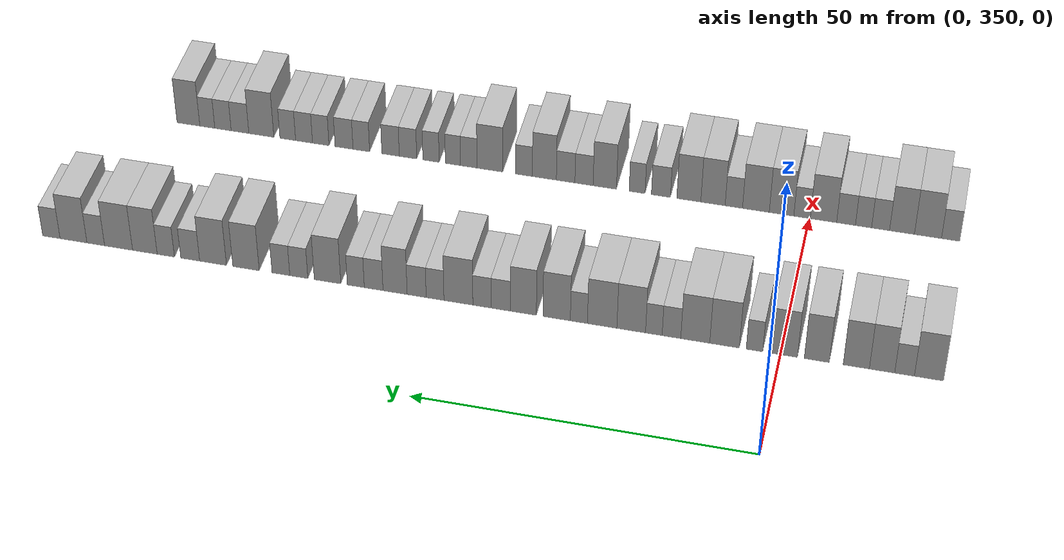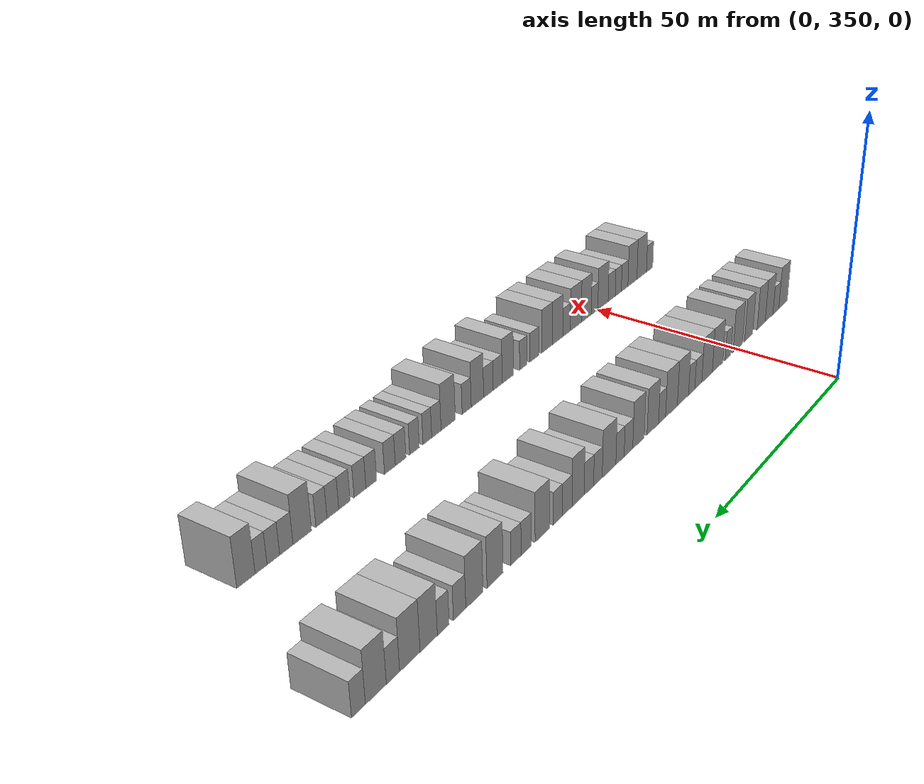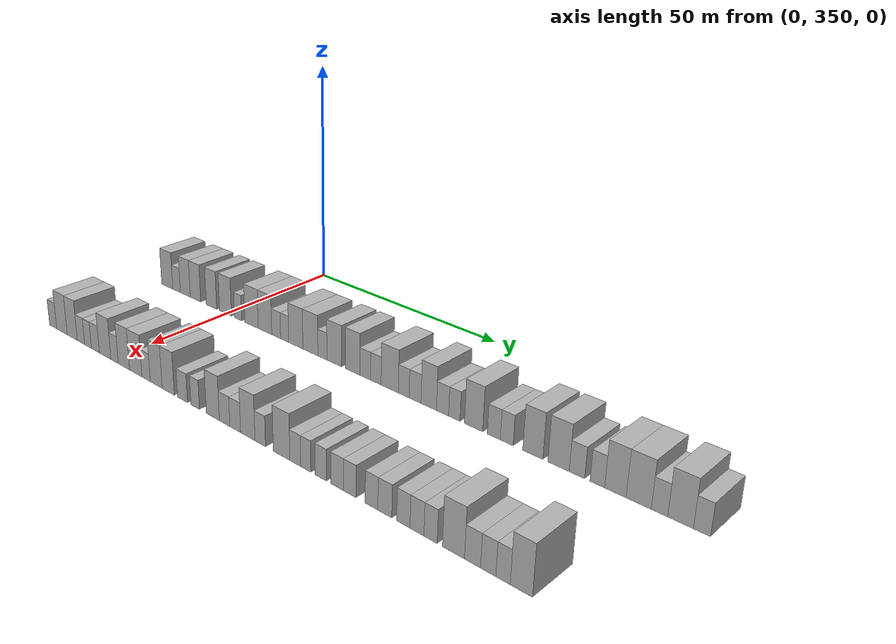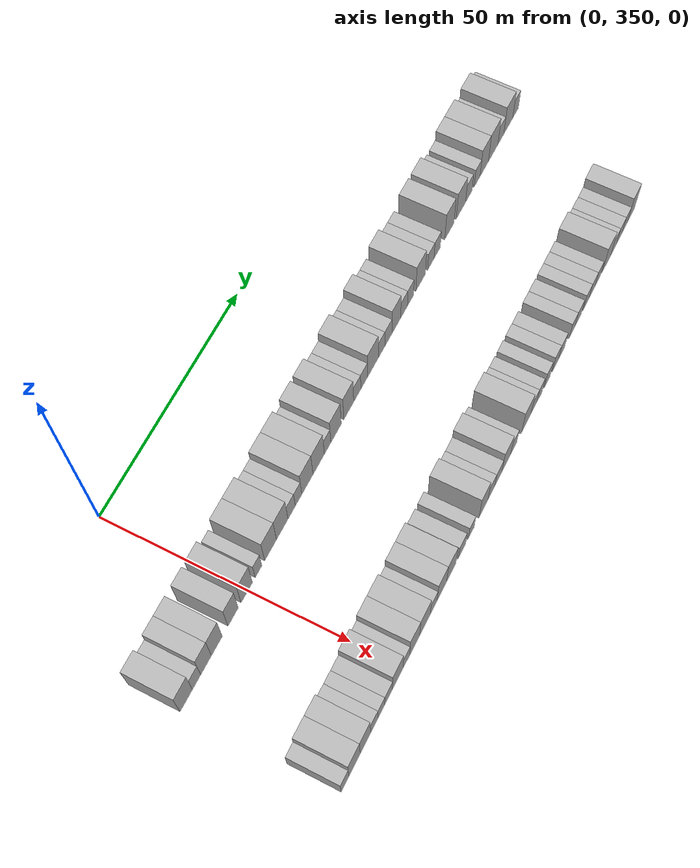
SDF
<sdf version="1.6">
 <world name="default">
  <model name="building_198">
   <static>1</static>
   <pose>25.0000 328.7330 0 0.000000 0.000000 0.000000</pose>
   <link name="link">
    <pose>0 0 4.50 0 0 0</pose>
    <collision name="collision"><geometry><box><size>10.0000 4.1553 9.0000</size></box></geometry></collision>
    <visual name="visual">
     <cast_shadows>0</cast_shadows>
     <geometry><box><size>10.0000 4.1553 9.0000</size></box></geometry>
     <material>
      <script>
       <uri>model://HANNAS_wall/materials/scripts</uri>
       <uri>model://HANNAS_wall/materials/textures</uri>
       <name>vrc/HANNAS_wall</name>
      </script>
     </material>
    </visual>
   </link>
  </model>
  <model name="building_199">
   <static>1</static>
   <pose>25.0000 332.2153 0 0.000000 0.000000 0.000000</pose>
   <link name="link">
    <pose>0 0 3.00 0 0 0</pose>
    <collision name="collision"><geometry><box><size>10.0000 2.8095 6.0000</size></box></geometry></collision>
    <visual name="visual">
     <cast_shadows>0</cast_shadows>
     <geometry><box><size>10.0000 2.8095 6.0000</size></box></geometry>
     <material>
      <script>
       <uri>model://HANNAS_wall/materials/scripts</uri>
       <uri>model://HANNAS_wall/materials/textures</uri>
       <name>vrc/HANNAS_wall</name>
      </script>
     </material>
    </visual>
   </link>
  </model>
  <model name="building_200">
   <static>1</static>
   <pose>25.0000 335.4338 0 0.000000 0.000000 0.000000</pose>
   <link name="link">
    <pose>0 0 4.50 0 0 0</pose>
    <collision name="collision"><geometry><box><size>10.0000 3.6274 9.0000</size></box></geometry></collision>
    <visual name="visual">
     <cast_shadows>0</cast_shadows>
     <geometry><box><size>10.0000 3.6274 9.0000</size></box></geometry>
     <material>
      <script>
       <uri>model://HANNAS_wall/materials/scripts</uri>
       <uri>model://HANNAS_wall/materials/textures</uri>
       <name>vrc/HANNAS_wall</name>
      </script>
     </material>
    </visual>
   </link>
  </model>
  <model name="building_201">
   <static>1</static>
   <pose>25.0000 339.1266 0 0.000000 0.000000 0.000000</pose>
   <link name="link">
    <pose>0 0 4.50 0 0 0</pose>
    <collision name="collision"><geometry><box><size>10.0000 3.7583 9.0000</size></box></geometry></collision>
    <visual name="visual">
     <cast_shadows>0</cast_shadows>
     <geometry><box><size>10.0000 3.7583 9.0000</size></box></geometry>
     <material>
      <script>
       <uri>model://HANNAS_wall/materials/scripts</uri>
       <uri>model://HANNAS_wall/materials/textures</uri>
       <name>vrc/HANNAS_wall</name>
      </script>
     </material>
    </visual>
   </link>
  </model>
  <model name="building_202">
   <static>1</static>
   <pose>25.0000 344.8124 0 0.000000 0.000000 0.000000</pose>
   <link name="link">
    <pose>0 0 4.50 0 0 0</pose>
    <collision name="collision"><geometry><box><size>10.0000 3.6133 9.0000</size></box></geometry></collision>
    <visual name="visual">
     <cast_shadows>0</cast_shadows>
     <geometry><box><size>10.0000 3.6133 9.0000</size></box></geometry>
     <material>
      <script>
       <uri>model://HANNAS_wall/materials/scripts</uri>
       <uri>model://HANNAS_wall/materials/textures</uri>
       <name>vrc/HANNAS_wall</name>
      </script>
     </material>
    </visual>
   </link>
  </model>
  <model name="building_203">
   <static>1</static>
   <pose>25.0000 349.6343 0 0.000000 0.000000 0.000000</pose>
   <link name="link">
    <pose>0 0 4.50 0 0 0</pose>
    <collision name="collision"><geometry><box><size>10.0000 4.0304 9.0000</size></box></geometry></collision>
    <visual name="visual">
     <cast_shadows>0</cast_shadows>
     <geometry><box><size>10.0000 4.0304 9.0000</size></box></geometry>
     <material>
      <script>
       <uri>model://HANNAS_wall/materials/scripts</uri>
       <uri>model://HANNAS_wall/materials/textures</uri>
       <name>vrc/HANNAS_wall</name>
      </script>
     </material>
    </visual>
   </link>
  </model>
  <model name="building_204">
   <static>1</static>
   <pose>25.0000 353.8510 0 0.000000 0.000000 0.000000</pose>
   <link name="link">
    <pose>0 0 3.00 0 0 0</pose>
    <collision name="collision"><geometry><box><size>10.0000 2.4030 6.0000</size></box></geometry></collision>
    <visual name="visual">
     <cast_shadows>0</cast_shadows>
     <geometry><box><size>10.0000 2.4030 6.0000</size></box></geometry>
     <material>
      <script>
       <uri>model://HANNAS_wall/materials/scripts</uri>
       <uri>model://HANNAS_wall/materials/textures</uri>
       <name>vrc/HANNAS_wall</name>
      </script>
     </material>
    </visual>
   </link>
  </model>
  <model name="building_205">
   <static>1</static>
   <pose>25.0000 358.2186 0 0.000000 0.000000 0.000000</pose>
   <link name="link">
    <pose>0 0 4.50 0 0 0</pose>
    <collision name="collision"><geometry><box><size>10.0000 4.3323 9.0000</size></box></geometry></collision>
    <visual name="visual">
     <cast_shadows>0</cast_shadows>
     <geometry><box><size>10.0000 4.3323 9.0000</size></box></geometry>
     <material>
      <script>
       <uri>model://HANNAS_wall/materials/scripts</uri>
       <uri>model://HANNAS_wall/materials/textures</uri>
       <name>vrc/HANNAS_wall</name>
      </script>
     </material>
    </visual>
   </link>
  </model>
  <model name="building_206">
   <static>1</static>
   <pose>25.0000 362.5115 0 0.000000 0.000000 0.000000</pose>
   <link name="link">
    <pose>0 0 4.50 0 0 0</pose>
    <collision name="collision"><geometry><box><size>10.0000 4.2535 9.0000</size></box></geometry></collision>
    <visual name="visual">
     <cast_shadows>0</cast_shadows>
     <geometry><box><size>10.0000 4.2535 9.0000</size></box></geometry>
     <material>
      <script>
       <uri>model://HANNAS_wall/materials/scripts</uri>
       <uri>model://HANNAS_wall/materials/textures</uri>
       <name>vrc/HANNAS_wall</name>
      </script>
     </material>
    </visual>
   </link>
  </model>
  <model name="building_207">
   <static>1</static>
   <pose>25.0000 366.0098 0 0.000000 0.000000 0.000000</pose>
   <link name="link">
    <pose>0 0 3.00 0 0 0</pose>
    <collision name="collision"><geometry><box><size>10.0000 2.7432 6.0000</size></box></geometry></collision>
    <visual name="visual">
     <cast_shadows>0</cast_shadows>
     <geometry><box><size>10.0000 2.7432 6.0000</size></box></geometry>
     <material>
      <script>
       <uri>model://HANNAS_wall/materials/scripts</uri>
       <uri>model://HANNAS_wall/materials/textures</uri>
       <name>vrc/HANNAS_wall</name>
      </script>
     </material>
    </visual>
   </link>
  </model>
  <model name="building_208">
   <static>1</static>
   <pose>25.0000 368.6078 0 0.000000 0.000000 0.000000</pose>
   <link name="link">
    <pose>0 0 3.00 0 0 0</pose>
    <collision name="collision"><geometry><box><size>10.0000 2.4528 6.0000</size></box></geometry></collision>
    <visual name="visual">
     <cast_shadows>0</cast_shadows>
     <geometry><box><size>10.0000 2.4528 6.0000</size></box></geometry>
     <material>
      <script>
       <uri>model://HANNAS_wall/materials/scripts</uri>
       <uri>model://HANNAS_wall/materials/textures</uri>
       <name>vrc/HANNAS_wall</name>
      </script>
     </material>
    </visual>
   </link>
  </model>
  <model name="building_209">
   <static>1</static>
   <pose>25.0000 371.9555 0 0.000000 0.000000 0.000000</pose>
   <link name="link">
    <pose>0 0 4.50 0 0 0</pose>
    <collision name="collision"><geometry><box><size>10.0000 4.2426 9.0000</size></box></geometry></collision>
    <visual name="visual">
     <cast_shadows>0</cast_shadows>
     <geometry><box><size>10.0000 4.2426 9.0000</size></box></geometry>
     <material>
      <script>
       <uri>model://HANNAS_wall/materials/scripts</uri>
       <uri>model://HANNAS_wall/materials/textures</uri>
       <name>vrc/HANNAS_wall</name>
      </script>
     </material>
    </visual>
   </link>
  </model>
  <model name="building_210">
   <static>1</static>
   <pose>25.0000 376.2689 0 0.000000 0.000000 0.000000</pose>
   <link name="link">
    <pose>0 0 4.50 0 0 0</pose>
    <collision name="collision"><geometry><box><size>10.0000 4.3841 9.0000</size></box></geometry></collision>
    <visual name="visual">
     <cast_shadows>0</cast_shadows>
     <geometry><box><size>10.0000 4.3841 9.0000</size></box></geometry>
     <material>
      <script>
       <uri>model://HANNAS_wall/materials/scripts</uri>
       <uri>model://HANNAS_wall/materials/textures</uri>
       <name>vrc/HANNAS_wall</name>
      </script>
     </material>
    </visual>
   </link>
  </model>
  <model name="building_211">
   <static>1</static>
   <pose>25.0000 379.7308 0 0.000000 0.000000 0.000000</pose>
   <link name="link">
    <pose>0 0 3.00 0 0 0</pose>
    <collision name="collision"><geometry><box><size>10.0000 2.5398 6.0000</size></box></geometry></collision>
    <visual name="visual">
     <cast_shadows>0</cast_shadows>
     <geometry><box><size>10.0000 2.5398 6.0000</size></box></geometry>
     <material>
      <script>
       <uri>model://HANNAS_wall/materials/scripts</uri>
       <uri>model://HANNAS_wall/materials/textures</uri>
       <name>vrc/HANNAS_wall</name>
      </script>
     </material>
    </visual>
   </link>
  </model>
  <model name="building_212">
   <static>1</static>
   <pose>25.0000 383.0440 0 0.000000 0.000000 0.000000</pose>
   <link name="link">
    <pose>0 0 4.50 0 0 0</pose>
    <collision name="collision"><geometry><box><size>10.0000 4.0866 9.0000</size></box></geometry></collision>
    <visual name="visual">
     <cast_shadows>0</cast_shadows>
     <geometry><box><size>10.0000 4.0866 9.0000</size></box></geometry>
     <material>
      <script>
       <uri>model://HANNAS_wall/materials/scripts</uri>
       <uri>model://HANNAS_wall/materials/textures</uri>
       <name>vrc/HANNAS_wall</name>
      </script>
     </material>
    </visual>
   </link>
  </model>
  <model name="building_213">
   <static>1</static>
   <pose>25.0000 388.0546 0 0.000000 0.000000 0.000000</pose>
   <link name="link">
    <pose>0 0 4.50 0 0 0</pose>
    <collision name="collision"><geometry><box><size>10.0000 3.9345 9.0000</size></box></geometry></collision>
    <visual name="visual">
     <cast_shadows>0</cast_shadows>
     <geometry><box><size>10.0000 3.9345 9.0000</size></box></geometry>
     <material>
      <script>
       <uri>model://HANNAS_wall/materials/scripts</uri>
       <uri>model://HANNAS_wall/materials/textures</uri>
       <name>vrc/HANNAS_wall</name>
      </script>
     </material>
    </visual>
   </link>
  </model>
  <model name="building_214">
   <static>1</static>
   <pose>25.0000 391.4646 0 0.000000 0.000000 0.000000</pose>
   <link name="link">
    <pose>0 0 3.00 0 0 0</pose>
    <collision name="collision"><geometry><box><size>10.0000 2.8855 6.0000</size></box></geometry></collision>
    <visual name="visual">
     <cast_shadows>0</cast_shadows>
     <geometry><box><size>10.0000 2.8855 6.0000</size></box></geometry>
     <material>
      <script>
       <uri>model://HANNAS_wall/materials/scripts</uri>
       <uri>model://HANNAS_wall/materials/textures</uri>
       <name>vrc/HANNAS_wall</name>
      </script>
     </material>
    </visual>
   </link>
  </model>
  <model name="building_215">
   <static>1</static>
   <pose>25.0000 394.2772 0 0.000000 0.000000 0.000000</pose>
   <link name="link">
    <pose>0 0 3.00 0 0 0</pose>
    <collision name="collision"><geometry><box><size>10.0000 2.7398 6.0000</size></box></geometry></collision>
    <visual name="visual">
     <cast_shadows>0</cast_shadows>
     <geometry><box><size>10.0000 2.7398 6.0000</size></box></geometry>
     <material>
      <script>
       <uri>model://HANNAS_wall/materials/scripts</uri>
       <uri>model://HANNAS_wall/materials/textures</uri>
       <name>vrc/HANNAS_wall</name>
      </script>
     </material>
    </visual>
   </link>
  </model>
  <model name="building_216">
   <static>1</static>
   <pose>25.0000 397.8391 0 0.000000 0.000000 0.000000</pose>
   <link name="link">
    <pose>0 0 4.50 0 0 0</pose>
    <collision name="collision"><geometry><box><size>10.0000 4.3838 9.0000</size></box></geometry></collision>
    <visual name="visual">
     <cast_shadows>0</cast_shadows>
     <geometry><box><size>10.0000 4.3838 9.0000</size></box></geometry>
     <material>
      <script>
       <uri>model://HANNAS_wall/materials/scripts</uri>
       <uri>model://HANNAS_wall/materials/textures</uri>
       <name>vrc/HANNAS_wall</name>
      </script>
     </material>
    </visual>
   </link>
  </model>
  <model name="building_217">
   <static>1</static>
   <pose>25.0000 401.3830 0 0.000000 0.000000 0.000000</pose>
   <link name="link">
    <pose>0 0 3.00 0 0 0</pose>
    <collision name="collision"><geometry><box><size>10.0000 2.7041 6.0000</size></box></geometry></collision>
    <visual name="visual">
     <cast_shadows>0</cast_shadows>
     <geometry><box><size>10.0000 2.7041 6.0000</size></box></geometry>
     <material>
      <script>
       <uri>model://HANNAS_wall/materials/scripts</uri>
       <uri>model://HANNAS_wall/materials/textures</uri>
       <name>vrc/HANNAS_wall</name>
      </script>
     </material>
    </visual>
   </link>
  </model>
  <model name="building_218">
   <static>1</static>
   <pose>25.0000 404.1833 0 0.000000 0.000000 0.000000</pose>
   <link name="link">
    <pose>0 0 3.00 0 0 0</pose>
    <collision name="collision"><geometry><box><size>10.0000 2.8965 6.0000</size></box></geometry></collision>
    <visual name="visual">
     <cast_shadows>0</cast_shadows>
     <geometry><box><size>10.0000 2.8965 6.0000</size></box></geometry>
     <material>
      <script>
       <uri>model://HANNAS_wall/materials/scripts</uri>
       <uri>model://HANNAS_wall/materials/textures</uri>
       <name>vrc/HANNAS_wall</name>
      </script>
     </material>
    </visual>
   </link>
  </model>
  <model name="building_219">
   <static>1</static>
   <pose>25.0000 407.4782 0 0.000000 0.000000 0.000000</pose>
   <link name="link">
    <pose>0 0 4.50 0 0 0</pose>
    <collision name="collision"><geometry><box><size>10.0000 3.6934 9.0000</size></box></geometry></collision>
    <visual name="visual">
     <cast_shadows>0</cast_shadows>
     <geometry><box><size>10.0000 3.6934 9.0000</size></box></geometry>
     <material>
      <script>
       <uri>model://HANNAS_wall/materials/scripts</uri>
       <uri>model://HANNAS_wall/materials/textures</uri>
       <name>vrc/HANNAS_wall</name>
      </script>
     </material>
    </visual>
   </link>
  </model>
  <model name="building_220">
   <static>1</static>
   <pose>25.0000 410.7605 0 0.000000 0.000000 0.000000</pose>
   <link name="link">
    <pose>0 0 3.00 0 0 0</pose>
    <collision name="collision"><geometry><box><size>10.0000 2.8711 6.0000</size></box></geometry></collision>
    <visual name="visual">
     <cast_shadows>0</cast_shadows>
     <geometry><box><size>10.0000 2.8711 6.0000</size></box></geometry>
     <material>
      <script>
       <uri>model://HANNAS_wall/materials/scripts</uri>
       <uri>model://HANNAS_wall/materials/textures</uri>
       <name>vrc/HANNAS_wall</name>
      </script>
     </material>
    </visual>
   </link>
  </model>
  <model name="building_221">
   <static>1</static>
   <pose>25.0000 413.5026 0 0.000000 0.000000 0.000000</pose>
   <link name="link">
    <pose>0 0 3.00 0 0 0</pose>
    <collision name="collision"><geometry><box><size>10.0000 2.6130 6.0000</size></box></geometry></collision>
    <visual name="visual">
     <cast_shadows>0</cast_shadows>
     <geometry><box><size>10.0000 2.6130 6.0000</size></box></geometry>
     <material>
      <script>
       <uri>model://HANNAS_wall/materials/scripts</uri>
       <uri>model://HANNAS_wall/materials/textures</uri>
       <name>vrc/HANNAS_wall</name>
      </script>
     </material>
    </visual>
   </link>
  </model>
  <model name="building_222">
   <static>1</static>
   <pose>25.0000 417.8541 0 0.000000 0.000000 0.000000</pose>
   <link name="link">
    <pose>0 0 4.50 0 0 0</pose>
    <collision name="collision"><geometry><box><size>10.0000 4.0901 9.0000</size></box></geometry></collision>
    <visual name="visual">
     <cast_shadows>0</cast_shadows>
     <geometry><box><size>10.0000 4.0901 9.0000</size></box></geometry>
     <material>
      <script>
       <uri>model://HANNAS_wall/materials/scripts</uri>
       <uri>model://HANNAS_wall/materials/textures</uri>
       <name>vrc/HANNAS_wall</name>
      </script>
     </material>
    </visual>
   </link>
  </model>
  <model name="building_223">
   <static>1</static>
   <pose>25.0000 422.2967 0 0.000000 0.000000 0.000000</pose>
   <link name="link">
    <pose>0 0 3.00 0 0 0</pose>
    <collision name="collision"><geometry><box><size>10.0000 2.7952 6.0000</size></box></geometry></collision>
    <visual name="visual">
     <cast_shadows>0</cast_shadows>
     <geometry><box><size>10.0000 2.7952 6.0000</size></box></geometry>
     <material>
      <script>
       <uri>model://HANNAS_wall/materials/scripts</uri>
       <uri>model://HANNAS_wall/materials/textures</uri>
       <name>vrc/HANNAS_wall</name>
      </script>
     </material>
    </visual>
   </link>
  </model>
  <model name="building_224">
   <static>1</static>
   <pose>25.0000 425.0713 0 0.000000 0.000000 0.000000</pose>
   <link name="link">
    <pose>0 0 3.00 0 0 0</pose>
    <collision name="collision"><geometry><box><size>10.0000 2.7539 6.0000</size></box></geometry></collision>
    <visual name="visual">
     <cast_shadows>0</cast_shadows>
     <geometry><box><size>10.0000 2.7539 6.0000</size></box></geometry>
     <material>
      <script>
       <uri>model://HANNAS_wall/materials/scripts</uri>
       <uri>model://HANNAS_wall/materials/textures</uri>
       <name>vrc/HANNAS_wall</name>
      </script>
     </material>
    </visual>
   </link>
  </model>
  <model name="building_225">
   <static>1</static>
   <pose>25.0000 430.5042 0 0.000000 0.000000 0.000000</pose>
   <link name="link">
    <pose>0 0 4.50 0 0 0</pose>
    <collision name="collision"><geometry><box><size>10.0000 4.1120 9.0000</size></box></geometry></collision>
    <visual name="visual">
     <cast_shadows>0</cast_shadows>
     <geometry><box><size>10.0000 4.1120 9.0000</size></box></geometry>
     <material>
      <script>
       <uri>model://HANNAS_wall/materials/scripts</uri>
       <uri>model://HANNAS_wall/materials/textures</uri>
       <name>vrc/HANNAS_wall</name>
      </script>
     </material>
    </visual>
   </link>
  </model>
  <model name="building_226">
   <static>1</static>
   <pose>25.0000 435.6620 0 0.000000 0.000000 0.000000</pose>
   <link name="link">
    <pose>0 0 4.50 0 0 0</pose>
    <collision name="collision"><geometry><box><size>10.0000 4.2036 9.0000</size></box></geometry></collision>
    <visual name="visual">
     <cast_shadows>0</cast_shadows>
     <geometry><box><size>10.0000 4.2036 9.0000</size></box></geometry>
     <material>
      <script>
       <uri>model://HANNAS_wall/materials/scripts</uri>
       <uri>model://HANNAS_wall/materials/textures</uri>
       <name>vrc/HANNAS_wall</name>
      </script>
     </material>
    </visual>
   </link>
  </model>
  <model name="building_227">
   <static>1</static>
   <pose>25.0000 439.2473 0 0.000000 0.000000 0.000000</pose>
   <link name="link">
    <pose>0 0 3.00 0 0 0</pose>
    <collision name="collision"><geometry><box><size>10.0000 2.9670 6.0000</size></box></geometry></collision>
    <visual name="visual">
     <cast_shadows>0</cast_shadows>
     <geometry><box><size>10.0000 2.9670 6.0000</size></box></geometry>
     <material>
      <script>
       <uri>model://HANNAS_wall/materials/scripts</uri>
       <uri>model://HANNAS_wall/materials/textures</uri>
       <name>vrc/HANNAS_wall</name>
      </script>
     </material>
    </visual>
   </link>
  </model>
  <model name="building_228">
   <static>1</static>
   <pose>25.0000 443.0910 0 0.000000 0.000000 0.000000</pose>
   <link name="link">
    <pose>0 0 3.00 0 0 0</pose>
    <collision name="collision"><geometry><box><size>10.0000 2.7204 6.0000</size></box></geometry></collision>
    <visual name="visual">
     <cast_shadows>0</cast_shadows>
     <geometry><box><size>10.0000 2.7204 6.0000</size></box></geometry>
     <material>
      <script>
       <uri>model://HANNAS_wall/materials/scripts</uri>
       <uri>model://HANNAS_wall/materials/textures</uri>
       <name>vrc/HANNAS_wall</name>
      </script>
     </material>
    </visual>
   </link>
  </model>
  <model name="building_229">
   <static>1</static>
   <pose>25.0000 446.4012 0 0.000000 0.000000 0.000000</pose>
   <link name="link">
    <pose>0 0 4.50 0 0 0</pose>
    <collision name="collision"><geometry><box><size>10.0000 3.9000 9.0000</size></box></geometry></collision>
    <visual name="visual">
     <cast_shadows>0</cast_shadows>
     <geometry><box><size>10.0000 3.9000 9.0000</size></box></geometry>
     <material>
      <script>
       <uri>model://HANNAS_wall/materials/scripts</uri>
       <uri>model://HANNAS_wall/materials/textures</uri>
       <name>vrc/HANNAS_wall</name>
      </script>
     </material>
    </visual>
   </link>
  </model>
  <model name="building_230">
   <static>1</static>
   <pose>25.0000 450.5761 0 0.000000 0.000000 0.000000</pose>
   <link name="link">
    <pose>0 0 4.50 0 0 0</pose>
    <collision name="collision"><geometry><box><size>10.0000 4.4497 9.0000</size></box></geometry></collision>
    <visual name="visual">
     <cast_shadows>0</cast_shadows>
     <geometry><box><size>10.0000 4.4497 9.0000</size></box></geometry>
     <material>
      <script>
       <uri>model://HANNAS_wall/materials/scripts</uri>
       <uri>model://HANNAS_wall/materials/textures</uri>
       <name>vrc/HANNAS_wall</name>
      </script>
     </material>
    </visual>
   </link>
  </model>
  <model name="building_231">
   <static>1</static>
   <pose>25.0000 454.2058 0 0.000000 0.000000 0.000000</pose>
   <link name="link">
    <pose>0 0 3.00 0 0 0</pose>
    <collision name="collision"><geometry><box><size>10.0000 2.8097 6.0000</size></box></geometry></collision>
    <visual name="visual">
     <cast_shadows>0</cast_shadows>
     <geometry><box><size>10.0000 2.8097 6.0000</size></box></geometry>
     <material>
      <script>
       <uri>model://HANNAS_wall/materials/scripts</uri>
       <uri>model://HANNAS_wall/materials/textures</uri>
       <name>vrc/HANNAS_wall</name>
      </script>
     </material>
    </visual>
   </link>
  </model>
  <model name="building_232">
   <static>1</static>
   <pose>25.0000 457.7583 0 0.000000 0.000000 0.000000</pose>
   <link name="link">
    <pose>0 0 4.50 0 0 0</pose>
    <collision name="collision"><geometry><box><size>10.0000 4.2955 9.0000</size></box></geometry></collision>
    <visual name="visual">
     <cast_shadows>0</cast_shadows>
     <geometry><box><size>10.0000 4.2955 9.0000</size></box></geometry>
     <material>
      <script>
       <uri>model://HANNAS_wall/materials/scripts</uri>
       <uri>model://HANNAS_wall/materials/textures</uri>
       <name>vrc/HANNAS_wall</name>
      </script>
     </material>
    </visual>
   </link>
  </model>
  <model name="building_233">
   <static>1</static>
   <pose>25.0000 461.2933 0 0.000000 0.000000 0.000000</pose>
   <link name="link">
    <pose>0 0 3.00 0 0 0</pose>
    <collision name="collision"><geometry><box><size>10.0000 2.7745 6.0000</size></box></geometry></collision>
    <visual name="visual">
     <cast_shadows>0</cast_shadows>
     <geometry><box><size>10.0000 2.7745 6.0000</size></box></geometry>
     <material>
      <script>
       <uri>model://HANNAS_wall/materials/scripts</uri>
       <uri>model://HANNAS_wall/materials/textures</uri>
       <name>vrc/HANNAS_wall</name>
      </script>
     </material>
    </visual>
   </link>
  </model>
  <model name="building_419">
   <static>1</static>
   <pose>55.0000 328.5589 0 0.000000 0.000000 0.000000</pose>
   <link name="link">
    <pose>0 0 3.00 0 0 0</pose>
    <collision name="collision"><geometry><box><size>10.0000 2.7514 6.0000</size></box></geometry></collision>
    <visual name="visual">
     <cast_shadows>0</cast_shadows>
     <geometry><box><size>10.0000 2.7514 6.0000</size></box></geometry>
     <material>
      <script>
       <uri>model://HANNAS_wall/materials/scripts</uri>
       <uri>model://HANNAS_wall/materials/textures</uri>
       <name>vrc/HANNAS_wall</name>
      </script>
     </material>
    </visual>
   </link>
  </model>
  <model name="building_420">
   <static>1</static>
   <pose>55.0000 331.9798 0 0.000000 0.000000 0.000000</pose>
   <link name="link">
    <pose>0 0 4.50 0 0 0</pose>
    <collision name="collision"><geometry><box><size>10.0000 4.0906 9.0000</size></box></geometry></collision>
    <visual name="visual">
     <cast_shadows>0</cast_shadows>
     <geometry><box><size>10.0000 4.0906 9.0000</size></box></geometry>
     <material>
      <script>
       <uri>model://HANNAS_wall/materials/scripts</uri>
       <uri>model://HANNAS_wall/materials/textures</uri>
       <name>vrc/HANNAS_wall</name>
      </script>
     </material>
    </visual>
   </link>
  </model>
  <model name="building_421">
   <static>1</static>
   <pose>55.0000 335.9126 0 0.000000 0.000000 0.000000</pose>
   <link name="link">
    <pose>0 0 4.50 0 0 0</pose>
    <collision name="collision"><geometry><box><size>10.0000 3.7750 9.0000</size></box></geometry></collision>
    <visual name="visual">
     <cast_shadows>0</cast_shadows>
     <geometry><box><size>10.0000 3.7750 9.0000</size></box></geometry>
     <material>
      <script>
       <uri>model://HANNAS_wall/materials/scripts</uri>
       <uri>model://HANNAS_wall/materials/textures</uri>
       <name>vrc/HANNAS_wall</name>
      </script>
     </material>
    </visual>
   </link>
  </model>
  <model name="building_422">
   <static>1</static>
   <pose>55.0000 339.1645 0 0.000000 0.000000 0.000000</pose>
   <link name="link">
    <pose>0 0 3.00 0 0 0</pose>
    <collision name="collision"><geometry><box><size>10.0000 2.7289 6.0000</size></box></geometry></collision>
    <visual name="visual">
     <cast_shadows>0</cast_shadows>
     <geometry><box><size>10.0000 2.7289 6.0000</size></box></geometry>
     <material>
      <script>
       <uri>model://HANNAS_wall/materials/scripts</uri>
       <uri>model://HANNAS_wall/materials/textures</uri>
       <name>vrc/HANNAS_wall</name>
      </script>
     </material>
    </visual>
   </link>
  </model>
  <model name="building_423">
   <static>1</static>
   <pose>55.0000 341.7624 0 0.000000 0.000000 0.000000</pose>
   <link name="link">
    <pose>0 0 3.00 0 0 0</pose>
    <collision name="collision"><geometry><box><size>10.0000 2.4668 6.0000</size></box></geometry></collision>
    <visual name="visual">
     <cast_shadows>0</cast_shadows>
     <geometry><box><size>10.0000 2.4668 6.0000</size></box></geometry>
     <material>
      <script>
       <uri>model://HANNAS_wall/materials/scripts</uri>
       <uri>model://HANNAS_wall/materials/textures</uri>
       <name>vrc/HANNAS_wall</name>
      </script>
     </material>
    </visual>
   </link>
  </model>
  <model name="building_424">
   <static>1</static>
   <pose>55.0000 344.4299 0 0.000000 0.000000 0.000000</pose>
   <link name="link">
    <pose>0 0 3.00 0 0 0</pose>
    <collision name="collision"><geometry><box><size>10.0000 2.8680 6.0000</size></box></geometry></collision>
    <visual name="visual">
     <cast_shadows>0</cast_shadows>
     <geometry><box><size>10.0000 2.8680 6.0000</size></box></geometry>
     <material>
      <script>
       <uri>model://HANNAS_wall/materials/scripts</uri>
       <uri>model://HANNAS_wall/materials/textures</uri>
       <name>vrc/HANNAS_wall</name>
      </script>
     </material>
    </visual>
   </link>
  </model>
  <model name="building_425">
   <static>1</static>
   <pose>55.0000 347.8875 0 0.000000 0.000000 0.000000</pose>
   <link name="link">
    <pose>0 0 4.50 0 0 0</pose>
    <collision name="collision"><geometry><box><size>10.0000 4.0473 9.0000</size></box></geometry></collision>
    <visual name="visual">
     <cast_shadows>0</cast_shadows>
     <geometry><box><size>10.0000 4.0473 9.0000</size></box></geometry>
     <material>
      <script>
       <uri>model://HANNAS_wall/materials/scripts</uri>
       <uri>model://HANNAS_wall/materials/textures</uri>
       <name>vrc/HANNAS_wall</name>
      </script>
     </material>
    </visual>
   </link>
  </model>
  <model name="building_426">
   <static>1</static>
   <pose>55.0000 351.1768 0 0.000000 0.000000 0.000000</pose>
   <link name="link">
    <pose>0 0 3.00 0 0 0</pose>
    <collision name="collision"><geometry><box><size>10.0000 2.5312 6.0000</size></box></geometry></collision>
    <visual name="visual">
     <cast_shadows>0</cast_shadows>
     <geometry><box><size>10.0000 2.5312 6.0000</size></box></geometry>
     <material>
      <script>
       <uri>model://HANNAS_wall/materials/scripts</uri>
       <uri>model://HANNAS_wall/materials/textures</uri>
       <name>vrc/HANNAS_wall</name>
      </script>
     </material>
    </visual>
   </link>
  </model>
  <model name="building_427">
   <static>1</static>
   <pose>55.0000 354.3320 0 0.000000 0.000000 0.000000</pose>
   <link name="link">
    <pose>0 0 4.50 0 0 0</pose>
    <collision name="collision"><geometry><box><size>10.0000 3.7790 9.0000</size></box></geometry></collision>
    <visual name="visual">
     <cast_shadows>0</cast_shadows>
     <geometry><box><size>10.0000 3.7790 9.0000</size></box></geometry>
     <material>
      <script>
       <uri>model://HANNAS_wall/materials/scripts</uri>
       <uri>model://HANNAS_wall/materials/textures</uri>
       <name>vrc/HANNAS_wall</name>
      </script>
     </material>
    </visual>
   </link>
  </model>
  <model name="building_428">
   <static>1</static>
   <pose>55.0000 358.2919 0 0.000000 0.000000 0.000000</pose>
   <link name="link">
    <pose>0 0 4.50 0 0 0</pose>
    <collision name="collision"><geometry><box><size>10.0000 4.1408 9.0000</size></box></geometry></collision>
    <visual name="visual">
     <cast_shadows>0</cast_shadows>
     <geometry><box><size>10.0000 4.1408 9.0000</size></box></geometry>
     <material>
      <script>
       <uri>model://HANNAS_wall/materials/scripts</uri>
       <uri>model://HANNAS_wall/materials/textures</uri>
       <name>vrc/HANNAS_wall</name>
      </script>
     </material>
    </visual>
   </link>
  </model>
  <model name="building_429">
   <static>1</static>
   <pose>55.0000 361.7085 0 0.000000 0.000000 0.000000</pose>
   <link name="link">
    <pose>0 0 3.00 0 0 0</pose>
    <collision name="collision"><geometry><box><size>10.0000 2.6926 6.0000</size></box></geometry></collision>
    <visual name="visual">
     <cast_shadows>0</cast_shadows>
     <geometry><box><size>10.0000 2.6926 6.0000</size></box></geometry>
     <material>
      <script>
       <uri>model://HANNAS_wall/materials/scripts</uri>
       <uri>model://HANNAS_wall/materials/textures</uri>
       <name>vrc/HANNAS_wall</name>
      </script>
     </material>
    </visual>
   </link>
  </model>
  <model name="building_430">
   <static>1</static>
   <pose>55.0000 364.9446 0 0.000000 0.000000 0.000000</pose>
   <link name="link">
    <pose>0 0 4.50 0 0 0</pose>
    <collision name="collision"><geometry><box><size>10.0000 3.7796 9.0000</size></box></geometry></collision>
    <visual name="visual">
     <cast_shadows>0</cast_shadows>
     <geometry><box><size>10.0000 3.7796 9.0000</size></box></geometry>
     <material>
      <script>
       <uri>model://HANNAS_wall/materials/scripts</uri>
       <uri>model://HANNAS_wall/materials/textures</uri>
       <name>vrc/HANNAS_wall</name>
      </script>
     </material>
    </visual>
   </link>
  </model>
  <model name="building_431">
   <static>1</static>
   <pose>55.0000 368.7074 0 0.000000 0.000000 0.000000</pose>
   <link name="link">
    <pose>0 0 4.50 0 0 0</pose>
    <collision name="collision"><geometry><box><size>10.0000 3.7460 9.0000</size></box></geometry></collision>
    <visual name="visual">
     <cast_shadows>0</cast_shadows>
     <geometry><box><size>10.0000 3.7460 9.0000</size></box></geometry>
     <material>
      <script>
       <uri>model://HANNAS_wall/materials/scripts</uri>
       <uri>model://HANNAS_wall/materials/textures</uri>
       <name>vrc/HANNAS_wall</name>
      </script>
     </material>
    </visual>
   </link>
  </model>
  <model name="building_432">
   <static>1</static>
   <pose>55.0000 373.0680 0 0.000000 0.000000 0.000000</pose>
   <link name="link">
    <pose>0 0 3.00 0 0 0</pose>
    <collision name="collision"><geometry><box><size>10.0000 2.9751 6.0000</size></box></geometry></collision>
    <visual name="visual">
     <cast_shadows>0</cast_shadows>
     <geometry><box><size>10.0000 2.9751 6.0000</size></box></geometry>
     <material>
      <script>
       <uri>model://HANNAS_wall/materials/scripts</uri>
       <uri>model://HANNAS_wall/materials/textures</uri>
       <name>vrc/HANNAS_wall</name>
      </script>
     </material>
    </visual>
   </link>
  </model>
  <model name="building_433">
   <static>1</static>
   <pose>55.0000 376.8060 0 0.000000 0.000000 0.000000</pose>
   <link name="link">
    <pose>0 0 3.00 0 0 0</pose>
    <collision name="collision"><geometry><box><size>10.0000 2.5008 6.0000</size></box></geometry></collision>
    <visual name="visual">
     <cast_shadows>0</cast_shadows>
     <geometry><box><size>10.0000 2.5008 6.0000</size></box></geometry>
     <material>
      <script>
       <uri>model://HANNAS_wall/materials/scripts</uri>
       <uri>model://HANNAS_wall/materials/textures</uri>
       <name>vrc/HANNAS_wall</name>
      </script>
     </material>
    </visual>
   </link>
  </model>
  <model name="building_434">
   <static>1</static>
   <pose>55.0000 381.8980 0 0.000000 0.000000 0.000000</pose>
   <link name="link">
    <pose>0 0 4.50 0 0 0</pose>
    <collision name="collision"><geometry><box><size>10.0000 3.6834 9.0000</size></box></geometry></collision>
    <visual name="visual">
     <cast_shadows>0</cast_shadows>
     <geometry><box><size>10.0000 3.6834 9.0000</size></box></geometry>
     <material>
      <script>
       <uri>model://HANNAS_wall/materials/scripts</uri>
       <uri>model://HANNAS_wall/materials/textures</uri>
       <name>vrc/HANNAS_wall</name>
      </script>
     </material>
    </visual>
   </link>
  </model>
  <model name="building_435">
   <static>1</static>
   <pose>55.0000 385.1761 0 0.000000 0.000000 0.000000</pose>
   <link name="link">
    <pose>0 0 3.00 0 0 0</pose>
    <collision name="collision"><geometry><box><size>10.0000 2.8727 6.0000</size></box></geometry></collision>
    <visual name="visual">
     <cast_shadows>0</cast_shadows>
     <geometry><box><size>10.0000 2.8727 6.0000</size></box></geometry>
     <material>
      <script>
       <uri>model://HANNAS_wall/materials/scripts</uri>
       <uri>model://HANNAS_wall/materials/textures</uri>
       <name>vrc/HANNAS_wall</name>
      </script>
     </material>
    </visual>
   </link>
  </model>
  <model name="building_436">
   <static>1</static>
   <pose>55.0000 388.0878 0 0.000000 0.000000 0.000000</pose>
   <link name="link">
    <pose>0 0 3.00 0 0 0</pose>
    <collision name="collision"><geometry><box><size>10.0000 2.9507 6.0000</size></box></geometry></collision>
    <visual name="visual">
     <cast_shadows>0</cast_shadows>
     <geometry><box><size>10.0000 2.9507 6.0000</size></box></geometry>
     <material>
      <script>
       <uri>model://HANNAS_wall/materials/scripts</uri>
       <uri>model://HANNAS_wall/materials/textures</uri>
       <name>vrc/HANNAS_wall</name>
      </script>
     </material>
    </visual>
   </link>
  </model>
  <model name="building_437">
   <static>1</static>
   <pose>55.0000 391.4713 0 0.000000 0.000000 0.000000</pose>
   <link name="link">
    <pose>0 0 4.50 0 0 0</pose>
    <collision name="collision"><geometry><box><size>10.0000 3.8162 9.0000</size></box></geometry></collision>
    <visual name="visual">
     <cast_shadows>0</cast_shadows>
     <geometry><box><size>10.0000 3.8162 9.0000</size></box></geometry>
     <material>
      <script>
       <uri>model://HANNAS_wall/materials/scripts</uri>
       <uri>model://HANNAS_wall/materials/textures</uri>
       <name>vrc/HANNAS_wall</name>
      </script>
     </material>
    </visual>
   </link>
  </model>
  <model name="building_438">
   <static>1</static>
   <pose>55.0000 394.7411 0 0.000000 0.000000 0.000000</pose>
   <link name="link">
    <pose>0 0 3.00 0 0 0</pose>
    <collision name="collision"><geometry><box><size>10.0000 2.7235 6.0000</size></box></geometry></collision>
    <visual name="visual">
     <cast_shadows>0</cast_shadows>
     <geometry><box><size>10.0000 2.7235 6.0000</size></box></geometry>
     <material>
      <script>
       <uri>model://HANNAS_wall/materials/scripts</uri>
       <uri>model://HANNAS_wall/materials/textures</uri>
       <name>vrc/HANNAS_wall</name>
      </script>
     </material>
    </visual>
   </link>
  </model>
  <model name="building_439">
   <static>1</static>
   <pose>55.0000 400.1679 0 0.000000 0.000000 0.000000</pose>
   <link name="link">
    <pose>0 0 4.50 0 0 0</pose>
    <collision name="collision"><geometry><box><size>10.0000 4.1300 9.0000</size></box></geometry></collision>
    <visual name="visual">
     <cast_shadows>0</cast_shadows>
     <geometry><box><size>10.0000 4.1300 9.0000</size></box></geometry>
     <material>
      <script>
       <uri>model://HANNAS_wall/materials/scripts</uri>
       <uri>model://HANNAS_wall/materials/textures</uri>
       <name>vrc/HANNAS_wall</name>
      </script>
     </material>
    </visual>
   </link>
  </model>
  <model name="building_440">
   <static>1</static>
   <pose>55.0000 403.5619 0 0.000000 0.000000 0.000000</pose>
   <link name="link">
    <pose>0 0 3.00 0 0 0</pose>
    <collision name="collision"><geometry><box><size>10.0000 2.6580 6.0000</size></box></geometry></collision>
    <visual name="visual">
     <cast_shadows>0</cast_shadows>
     <geometry><box><size>10.0000 2.6580 6.0000</size></box></geometry>
     <material>
      <script>
       <uri>model://HANNAS_wall/materials/scripts</uri>
       <uri>model://HANNAS_wall/materials/textures</uri>
       <name>vrc/HANNAS_wall</name>
      </script>
     </material>
    </visual>
   </link>
  </model>
  <model name="building_441">
   <static>1</static>
   <pose>55.0000 406.1084 0 0.000000 0.000000 0.000000</pose>
   <link name="link">
    <pose>0 0 3.00 0 0 0</pose>
    <collision name="collision"><geometry><box><size>10.0000 2.4349 6.0000</size></box></geometry></collision>
    <visual name="visual">
     <cast_shadows>0</cast_shadows>
     <geometry><box><size>10.0000 2.4349 6.0000</size></box></geometry>
     <material>
      <script>
       <uri>model://HANNAS_wall/materials/scripts</uri>
       <uri>model://HANNAS_wall/materials/textures</uri>
       <name>vrc/HANNAS_wall</name>
      </script>
     </material>
    </visual>
   </link>
  </model>
  <model name="building_442">
   <static>1</static>
   <pose>55.0000 409.6408 0 0.000000 0.000000 0.000000</pose>
   <link name="link">
    <pose>0 0 3.00 0 0 0</pose>
    <collision name="collision"><geometry><box><size>10.0000 2.6300 6.0000</size></box></geometry></collision>
    <visual name="visual">
     <cast_shadows>0</cast_shadows>
     <geometry><box><size>10.0000 2.6300 6.0000</size></box></geometry>
     <material>
      <script>
       <uri>model://HANNAS_wall/materials/scripts</uri>
       <uri>model://HANNAS_wall/materials/textures</uri>
       <name>vrc/HANNAS_wall</name>
      </script>
     </material>
    </visual>
   </link>
  </model>
  <model name="building_443">
   <static>1</static>
   <pose>55.0000 413.3672 0 0.000000 0.000000 0.000000</pose>
   <link name="link">
    <pose>0 0 3.00 0 0 0</pose>
    <collision name="collision"><geometry><box><size>10.0000 2.8228 6.0000</size></box></geometry></collision>
    <visual name="visual">
     <cast_shadows>0</cast_shadows>
     <geometry><box><size>10.0000 2.8228 6.0000</size></box></geometry>
     <material>
      <script>
       <uri>model://HANNAS_wall/materials/scripts</uri>
       <uri>model://HANNAS_wall/materials/textures</uri>
       <name>vrc/HANNAS_wall</name>
      </script>
     </material>
    </visual>
   </link>
  </model>
  <model name="building_444">
   <static>1</static>
   <pose>55.0000 416.1925 0 0.000000 0.000000 0.000000</pose>
   <link name="link">
    <pose>0 0 3.00 0 0 0</pose>
    <collision name="collision"><geometry><box><size>10.0000 2.8278 6.0000</size></box></geometry></collision>
    <visual name="visual">
     <cast_shadows>0</cast_shadows>
     <geometry><box><size>10.0000 2.8278 6.0000</size></box></geometry>
     <material>
      <script>
       <uri>model://HANNAS_wall/materials/scripts</uri>
       <uri>model://HANNAS_wall/materials/textures</uri>
       <name>vrc/HANNAS_wall</name>
      </script>
     </material>
    </visual>
   </link>
  </model>
  <model name="building_445">
   <static>1</static>
   <pose>55.0000 420.9598 0 0.000000 0.000000 0.000000</pose>
   <link name="link">
    <pose>0 0 3.00 0 0 0</pose>
    <collision name="collision"><geometry><box><size>10.0000 2.7068 6.0000</size></box></geometry></collision>
    <visual name="visual">
     <cast_shadows>0</cast_shadows>
     <geometry><box><size>10.0000 2.7068 6.0000</size></box></geometry>
     <material>
      <script>
       <uri>model://HANNAS_wall/materials/scripts</uri>
       <uri>model://HANNAS_wall/materials/textures</uri>
       <name>vrc/HANNAS_wall</name>
      </script>
     </material>
    </visual>
   </link>
  </model>
  <model name="building_446">
   <static>1</static>
   <pose>55.0000 423.7800 0 0.000000 0.000000 0.000000</pose>
   <link name="link">
    <pose>0 0 3.00 0 0 0</pose>
    <collision name="collision"><geometry><box><size>10.0000 2.9336 6.0000</size></box></geometry></collision>
    <visual name="visual">
     <cast_shadows>0</cast_shadows>
     <geometry><box><size>10.0000 2.9336 6.0000</size></box></geometry>
     <material>
      <script>
       <uri>model://HANNAS_wall/materials/scripts</uri>
       <uri>model://HANNAS_wall/materials/textures</uri>
       <name>vrc/HANNAS_wall</name>
      </script>
     </material>
    </visual>
   </link>
  </model>
  <model name="building_447">
   <static>1</static>
   <pose>55.0000 427.5990 0 0.000000 0.000000 0.000000</pose>
   <link name="link">
    <pose>0 0 3.00 0 0 0</pose>
    <collision name="collision"><geometry><box><size>10.0000 2.7045 6.0000</size></box></geometry></collision>
    <visual name="visual">
     <cast_shadows>0</cast_shadows>
     <geometry><box><size>10.0000 2.7045 6.0000</size></box></geometry>
     <material>
      <script>
       <uri>model://HANNAS_wall/materials/scripts</uri>
       <uri>model://HANNAS_wall/materials/textures</uri>
       <name>vrc/HANNAS_wall</name>
      </script>
     </material>
    </visual>
   </link>
  </model>
  <model name="building_448">
   <static>1</static>
   <pose>55.0000 430.3389 0 0.000000 0.000000 0.000000</pose>
   <link name="link">
    <pose>0 0 3.00 0 0 0</pose>
    <collision name="collision"><geometry><box><size>10.0000 2.7754 6.0000</size></box></geometry></collision>
    <visual name="visual">
     <cast_shadows>0</cast_shadows>
     <geometry><box><size>10.0000 2.7754 6.0000</size></box></geometry>
     <material>
      <script>
       <uri>model://HANNAS_wall/materials/scripts</uri>
       <uri>model://HANNAS_wall/materials/textures</uri>
       <name>vrc/HANNAS_wall</name>
      </script>
     </material>
    </visual>
   </link>
  </model>
  <model name="building_449">
   <static>1</static>
   <pose>55.0000 433.0214 0 0.000000 0.000000 0.000000</pose>
   <link name="link">
    <pose>0 0 3.00 0 0 0</pose>
    <collision name="collision"><geometry><box><size>10.0000 2.5894 6.0000</size></box></geometry></collision>
    <visual name="visual">
     <cast_shadows>0</cast_shadows>
     <geometry><box><size>10.0000 2.5894 6.0000</size></box></geometry>
     <material>
      <script>
       <uri>model://HANNAS_wall/materials/scripts</uri>
       <uri>model://HANNAS_wall/materials/textures</uri>
       <name>vrc/HANNAS_wall</name>
      </script>
     </material>
    </visual>
   </link>
  </model>
  <model name="building_450">
   <static>1</static>
   <pose>55.0000 437.3857 0 0.000000 0.000000 0.000000</pose>
   <link name="link">
    <pose>0 0 4.50 0 0 0</pose>
    <collision name="collision"><geometry><box><size>10.0000 4.1392 9.0000</size></box></geometry></collision>
    <visual name="visual">
     <cast_shadows>0</cast_shadows>
     <geometry><box><size>10.0000 4.1392 9.0000</size></box></geometry>
     <material>
      <script>
       <uri>model://HANNAS_wall/materials/scripts</uri>
       <uri>model://HANNAS_wall/materials/textures</uri>
       <name>vrc/HANNAS_wall</name>
      </script>
     </material>
    </visual>
   </link>
  </model>
  <model name="building_451">
   <static>1</static>
   <pose>55.0000 440.9199 0 0.000000 0.000000 0.000000</pose>
   <link name="link">
    <pose>0 0 3.00 0 0 0</pose>
    <collision name="collision"><geometry><box><size>10.0000 2.9292 6.0000</size></box></geometry></collision>
    <visual name="visual">
     <cast_shadows>0</cast_shadows>
     <geometry><box><size>10.0000 2.9292 6.0000</size></box></geometry>
     <material>
      <script>
       <uri>model://HANNAS_wall/materials/scripts</uri>
       <uri>model://HANNAS_wall/materials/textures</uri>
       <name>vrc/HANNAS_wall</name>
      </script>
     </material>
    </visual>
   </link>
  </model>
  <model name="building_452">
   <static>1</static>
   <pose>55.0000 443.7449 0 0.000000 0.000000 0.000000</pose>
   <link name="link">
    <pose>0 0 3.00 0 0 0</pose>
    <collision name="collision"><geometry><box><size>10.0000 2.7208 6.0000</size></box></geometry></collision>
    <visual name="visual">
     <cast_shadows>0</cast_shadows>
     <geometry><box><size>10.0000 2.7208 6.0000</size></box></geometry>
     <material>
      <script>
       <uri>model://HANNAS_wall/materials/scripts</uri>
       <uri>model://HANNAS_wall/materials/textures</uri>
       <name>vrc/HANNAS_wall</name>
      </script>
     </material>
    </visual>
   </link>
  </model>
  <model name="building_453">
   <static>1</static>
   <pose>55.0000 446.3551 0 0.000000 0.000000 0.000000</pose>
   <link name="link">
    <pose>0 0 3.00 0 0 0</pose>
    <collision name="collision"><geometry><box><size>10.0000 2.4997 6.0000</size></box></geometry></collision>
    <visual name="visual">
     <cast_shadows>0</cast_shadows>
     <geometry><box><size>10.0000 2.4997 6.0000</size></box></geometry>
     <material>
      <script>
       <uri>model://HANNAS_wall/materials/scripts</uri>
       <uri>model://HANNAS_wall/materials/textures</uri>
       <name>vrc/HANNAS_wall</name>
      </script>
     </material>
    </visual>
   </link>
  </model>
  <model name="building_454">
   <static>1</static>
   <pose>55.0000 449.5004 0 0.000000 0.000000 0.000000</pose>
   <link name="link">
    <pose>0 0 4.50 0 0 0</pose>
    <collision name="collision"><geometry><box><size>10.0000 3.7909 9.0000</size></box></geometry></collision>
    <visual name="visual">
     <cast_shadows>0</cast_shadows>
     <geometry><box><size>10.0000 3.7909 9.0000</size></box></geometry>
     <material>
      <script>
       <uri>model://HANNAS_wall/materials/scripts</uri>
       <uri>model://HANNAS_wall/materials/textures</uri>
       <name>vrc/HANNAS_wall</name>
      </script>
     </material>
    </visual>
   </link>
  </model>
 </world>
</sdf>
